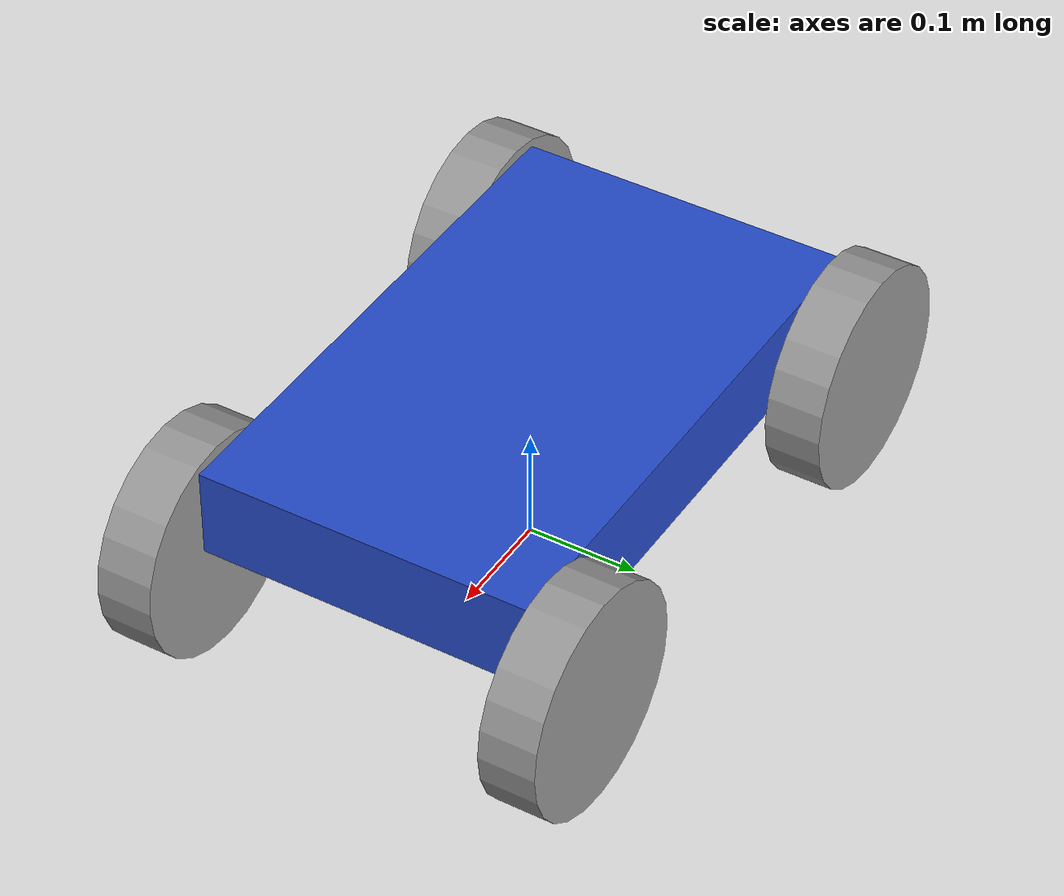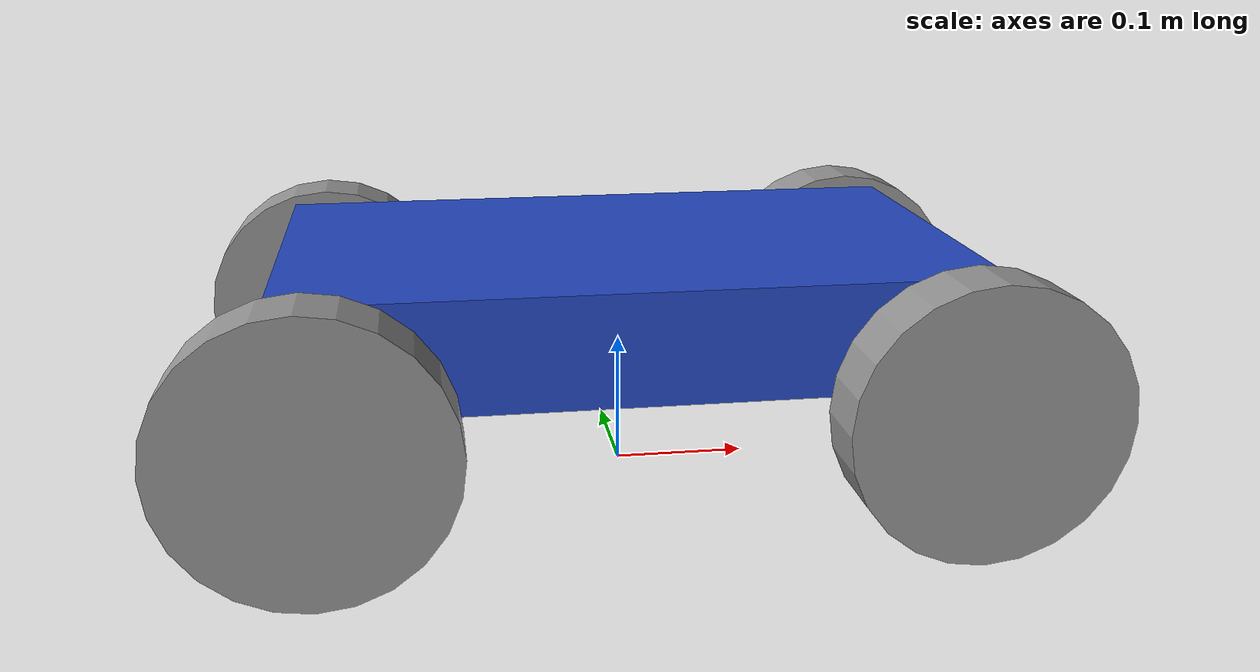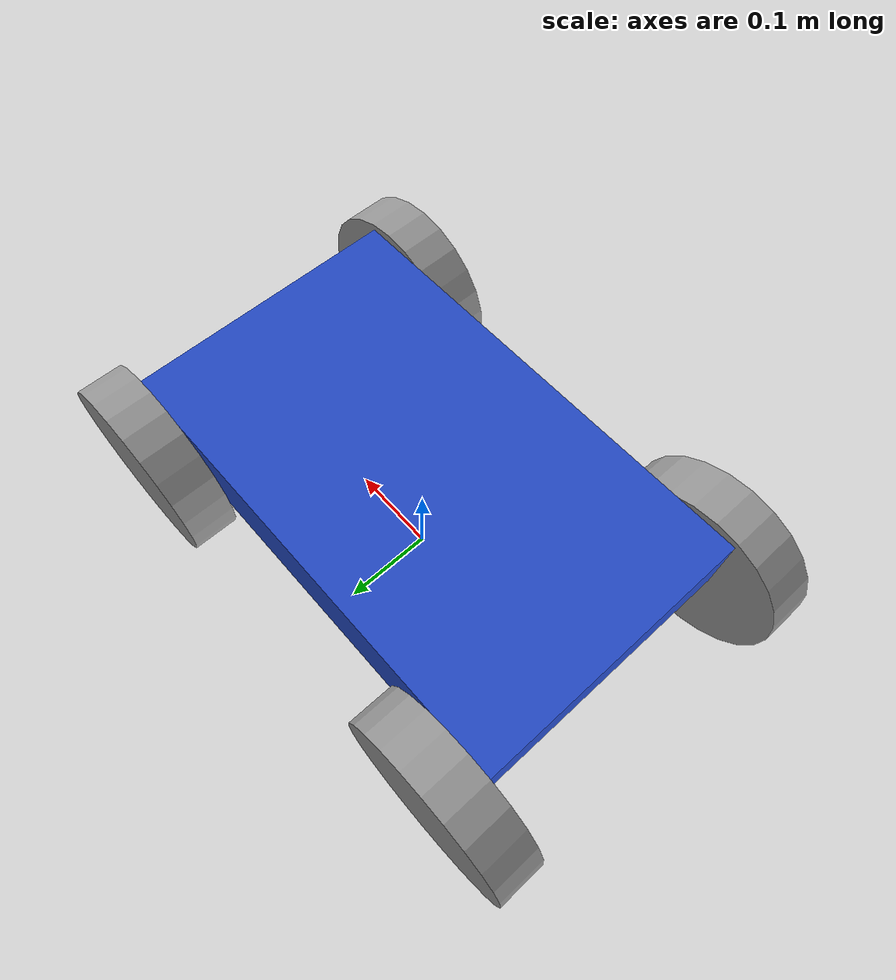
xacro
<?xml version="1.0"?>
<robot xmlns:xacro="http://www.ros.org/wiki/xacro">

    <xacro:property name="base_length" value="0.5" />
    <xacro:property name="base_width" value="0.3" />
    <xacro:property name="base_height" value="0.08" />
    <xacro:property name="wheel_radius" value="0.1" />
    <xacro:property name="wheel_length" value="0.05" />

    <!-- base_footprint (projection of base_link on the ground) -->

    <link name="base_footprint"/>

    <joint name="base_joint" type="fixed">
        <parent link="base_footprint"/>
        <child link="base_link"/>
        <origin xyz="0 0 0.14" rpy="0 0 0"/>
    </joint>

    <!-- base_link and base_scan (required for Nav2) -->

    <link name="base_link">
        <visual>
            <geometry>
                <box size="${base_length} ${base_width} ${base_height}" />
            </geometry>
            <origin xyz="0 0 0" rpy="0 0 0" />
            <material name="blue" />
        </visual>
        <collision>
            <geometry>
                <box size="${base_length} ${base_width} ${base_height}" />
            </geometry>
            <origin xyz="0 0 0" rpy="0 0 0" />
        </collision>

        <xacro:box_inertia m="10.0" l="${2*base_length}" w="${2*base_width}" h="${2*base_height}"
                           xyz="0 0 0" rpy="0 0 0" />
    </link>

    <!-- Wheels (4 differential wheels) -->

    <xacro:macro name="wheel_link" params="prefix">
        <link name="${prefix}_wheel">
            <visual>
                <geometry>
                    <cylinder radius="${wheel_radius}" length="${wheel_length}"/>
                </geometry>
                <origin xyz="0 0 0" rpy="${pi /2.0} 0 0" />
                <material name="grey" />
            </visual>
            <collision>
                <geometry>
                    <cylinder radius="${wheel_radius}" length="${wheel_length}"/>
                </geometry>
                <origin xyz="0 0 0" rpy="${pi /2.0} 0 0" />
            </collision>
            <xacro:cylinder_inertia m="0.5" r="${2*wheel_radius}" h="${2*wheel_length}"
                                    xyz="0 0 0" rpy="${pi /2.0} 0 0" />
        </link>
    </xacro:macro>

    <joint name="base_fl_wheel_joint" type="continuous">
        <parent link="base_link"/>
        <child link="fl_wheel"/>
        <origin xyz="0.225 ${(base_width + wheel_length) / 2.0} -0.05" rpy="0 0 0"/>
        <axis xyz="0 1 0"/>
    </joint>

    <xacro:wheel_link prefix="fl" />

    <joint name="base_fr_wheel_joint" type="continuous">
        <parent link="base_link"/>
        <child link="fr_wheel"/>
        <origin xyz="0.225 ${-(base_width + wheel_length) / 2.0} -0.05" rpy="0 0 0"/>
        <axis xyz="0 1 0"/>
    </joint>

    <xacro:wheel_link prefix="fr" />

    <joint name="base_rl_wheel_joint" type="continuous">
        <parent link="base_link"/>
        <child link="rl_wheel"/>
        <origin xyz="-0.225 ${(base_width + wheel_length) / 2.0} -0.05" rpy="0 0 0"/>
        <axis xyz="0 1 0"/>
    </joint>

    <xacro:wheel_link prefix="rl" />

    <joint name="base_rr_wheel_joint" type="continuous">
        <parent link="base_link"/>
        <child link="rr_wheel"/>
        <origin xyz="-0.225  ${-(base_width + wheel_length) / 2.0} -0.05" rpy="0 0 0"/>
        <axis xyz="0 1 0"/>
    </joint>

    <xacro:wheel_link prefix="rr" />

</robot>
